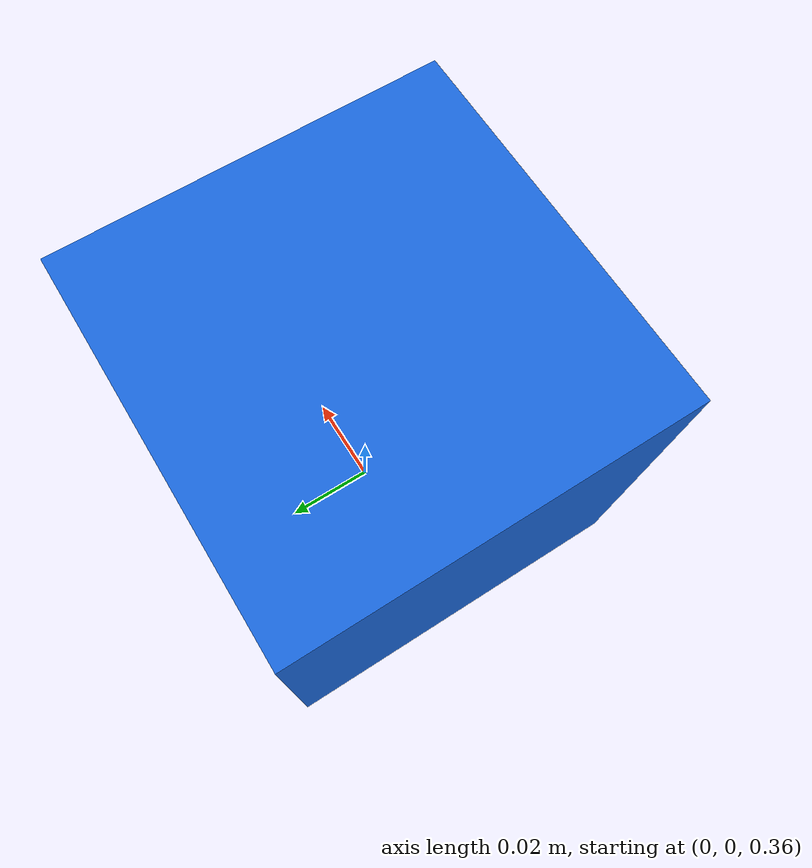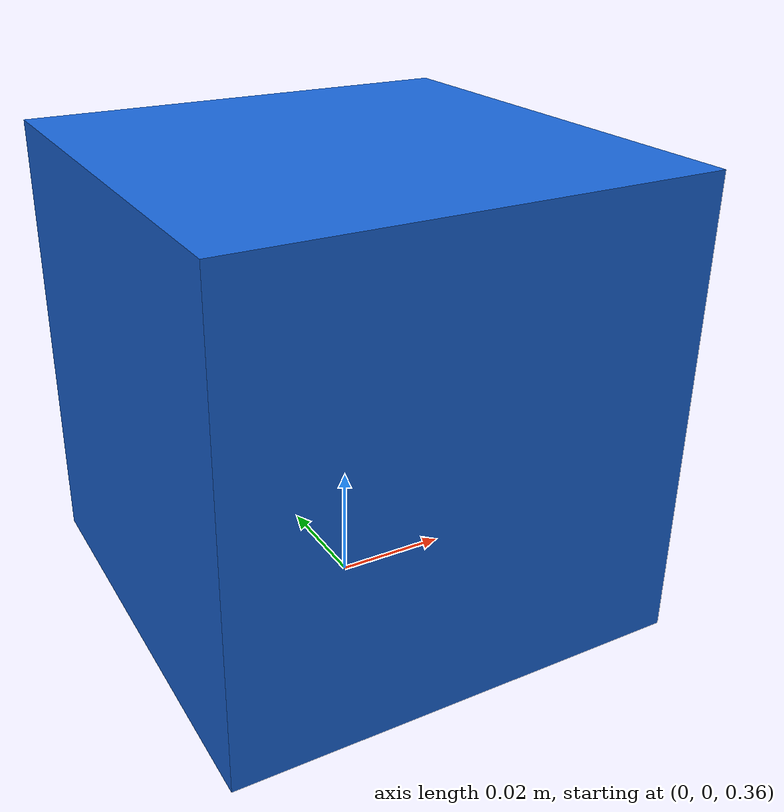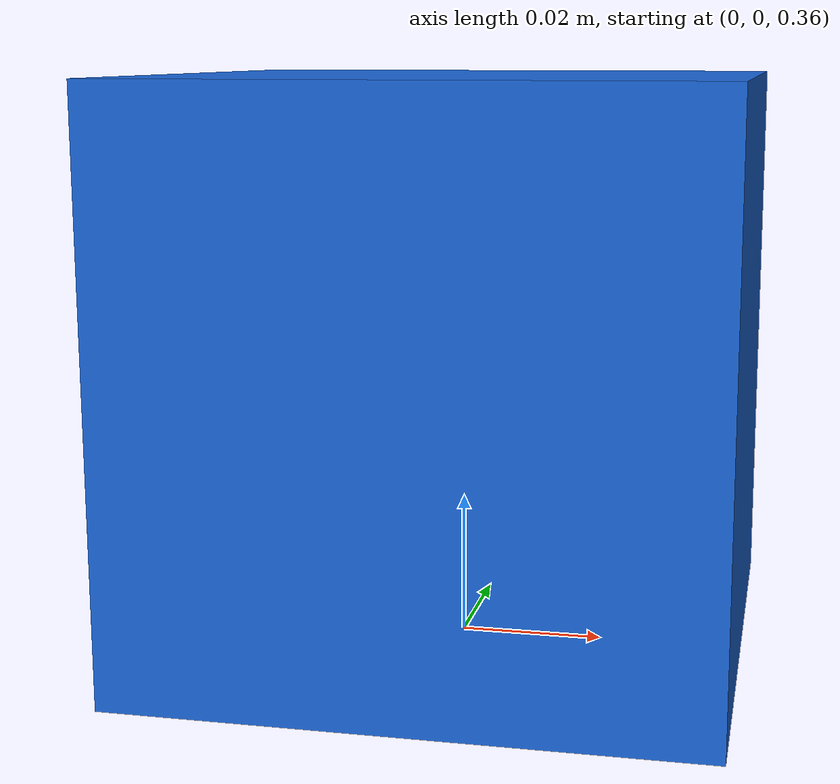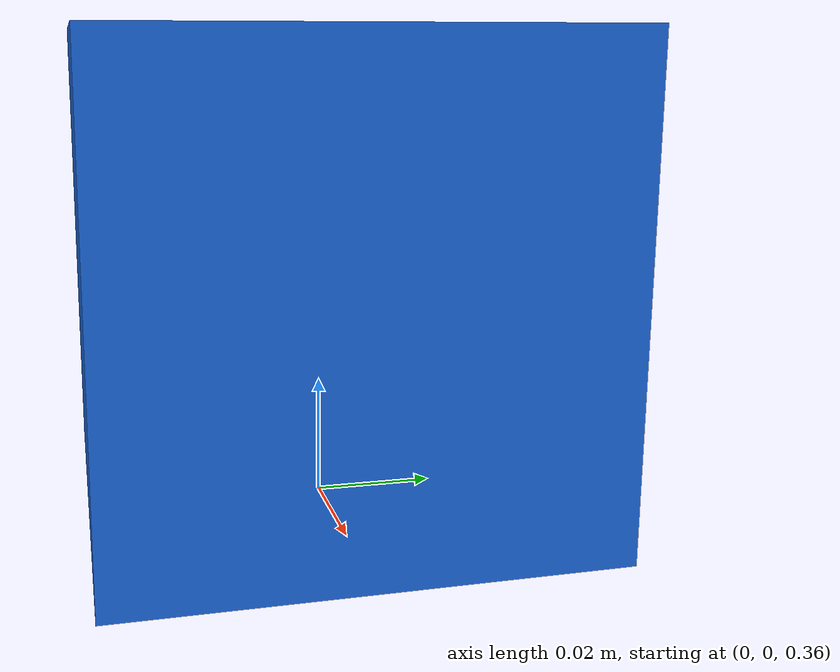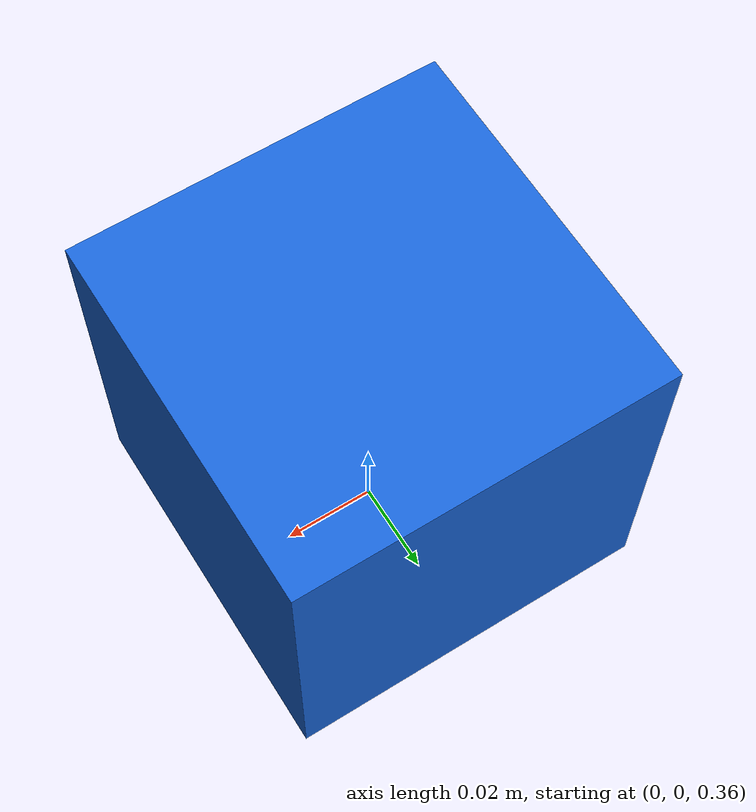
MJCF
<mujoco model="TableSync first physics lesson">
  <option timestep="0.002" gravity="0 0 -9.81"/>
  <visual><global offwidth="640" offheight="480"/></visual>
  <worldbody>
    <light pos="0 -1 3"/>
    <camera name="overview" pos="1 -1 1" xyaxes="1 1 0 -1 1 2"/>
    <geom name="floor" type="plane" size="1 1 0.1" rgba="0.75 0.78 0.8 1"/>
    <body name="cube" pos="0 0 0.4">
      <freejoint/>
      <geom type="box" size="0.04 0.04 0.04" mass="0.1" rgba="0.1 0.4 0.85 1"/>
    </body>
  </worldbody>
</mujoco>
